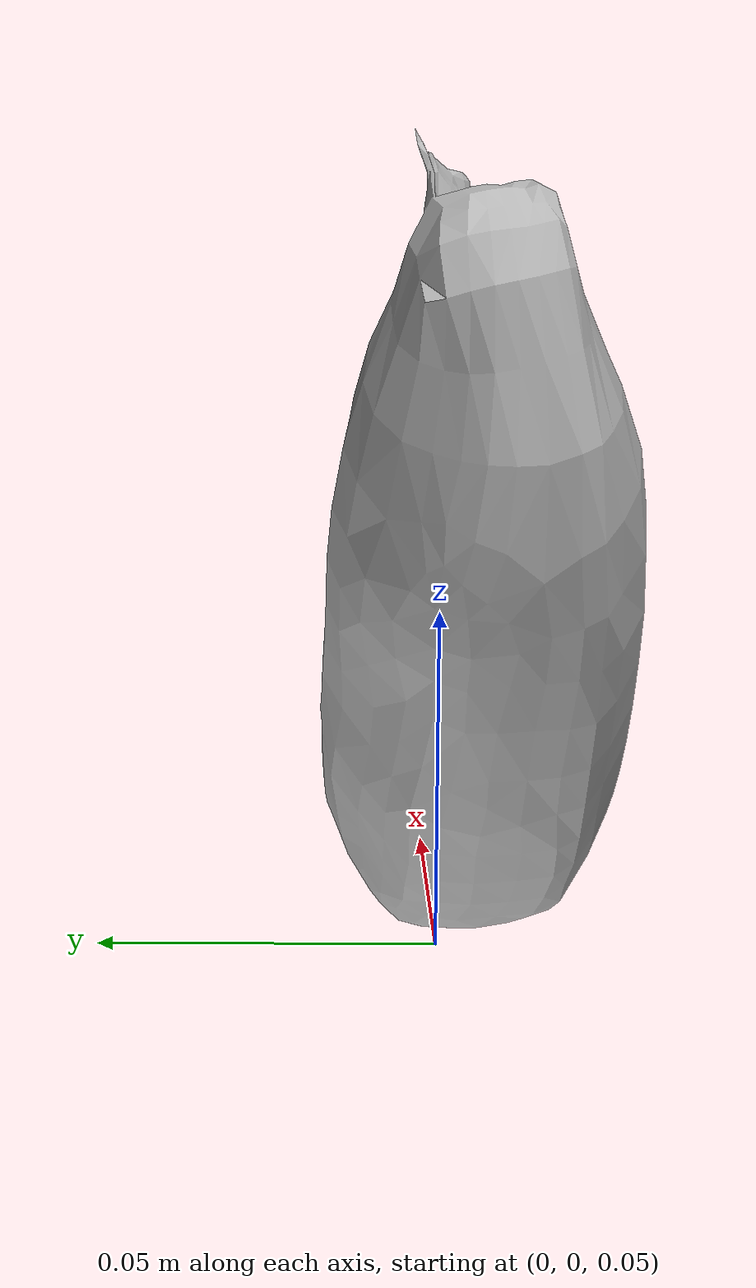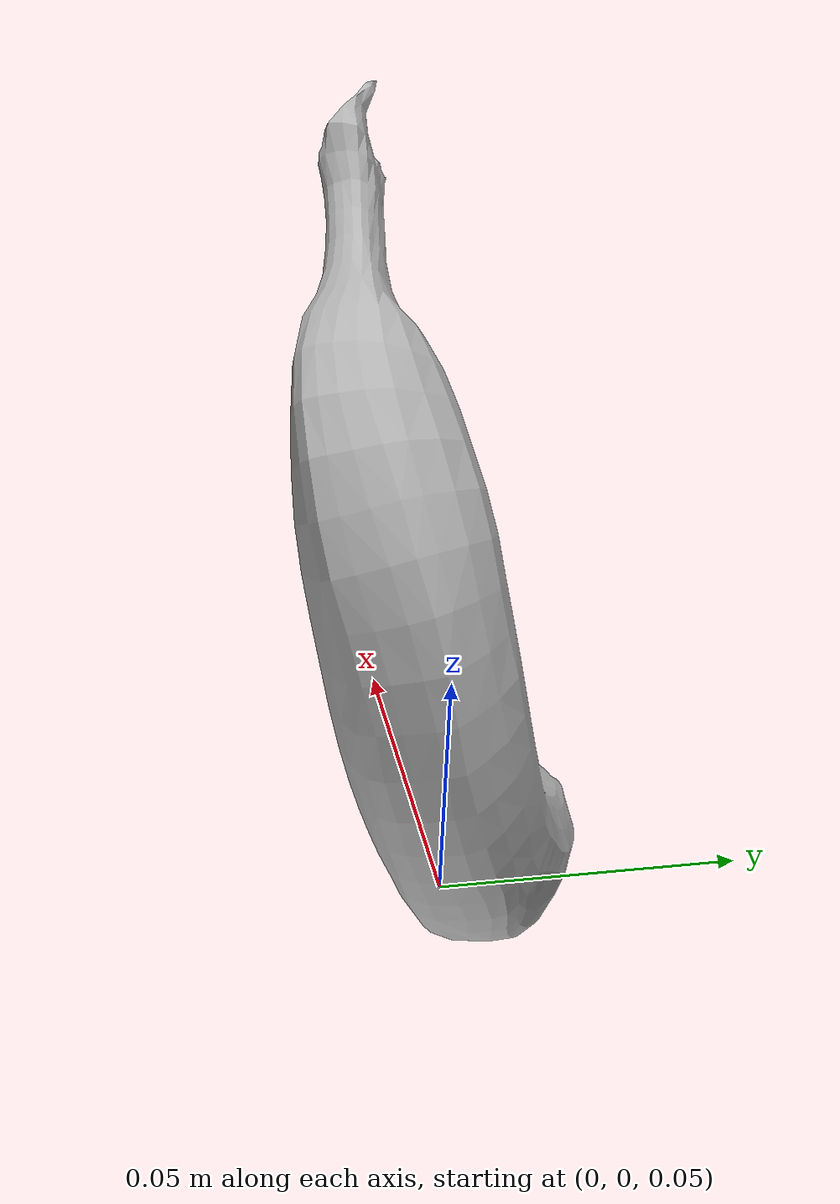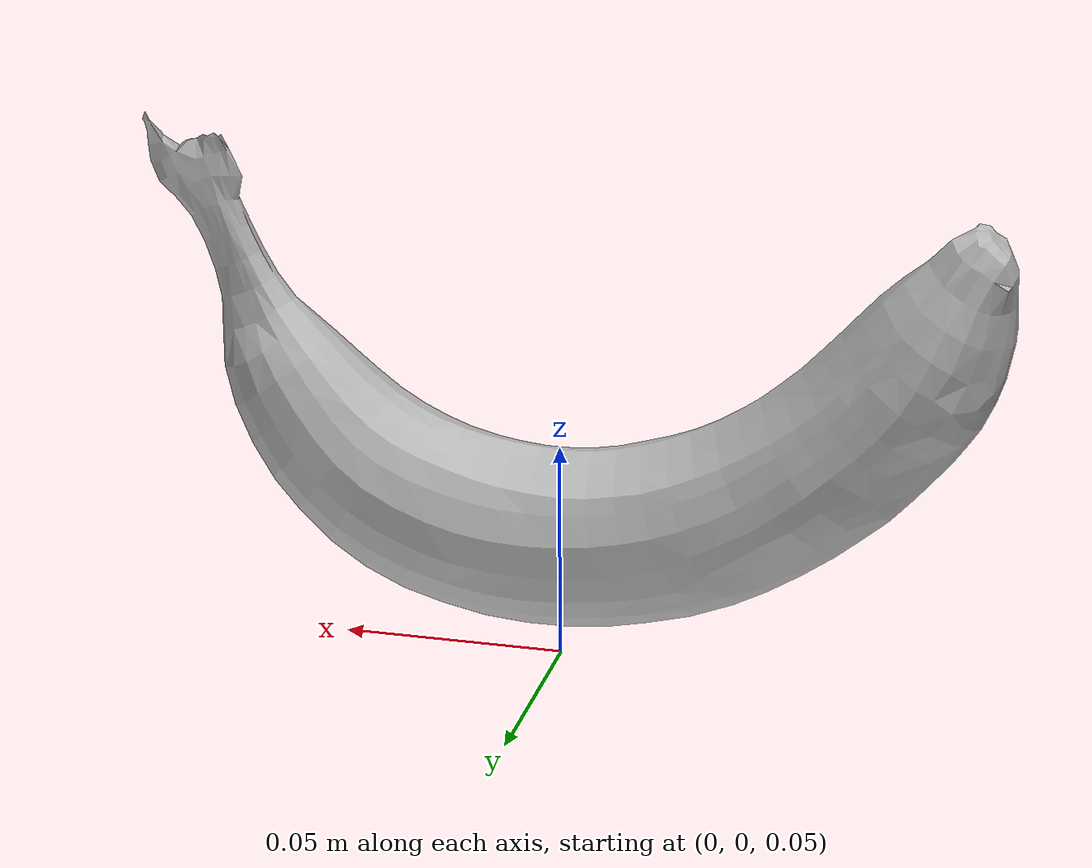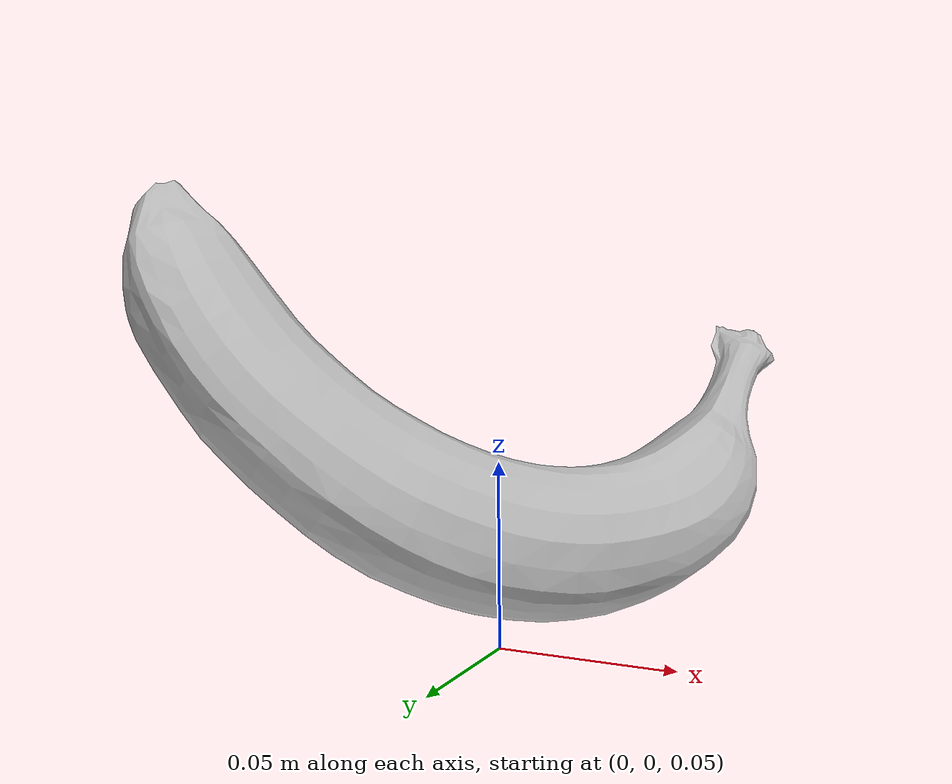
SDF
<?xml version='1.0' ?>
<sdf version="1.6">
    <model name="Banana for Scale">
        <link name="link">
            <collision name="collision">
                <pose>0 0 0.12 0 1.5708 0</pose>
                <geometry>
                    <mesh>
                        <uri>meshes/Banana.dae</uri>
                    </mesh>
                </geometry>
            </collision>
            <visual name="visual">
                <pose>0 0 0.12 0 1.5708 0</pose>
                <geometry>
                    <mesh>
                        <uri>meshes/Banana.dae</uri>
                    </mesh>
                </geometry>
            </visual>
        </link>
    </model>
</sdf>
